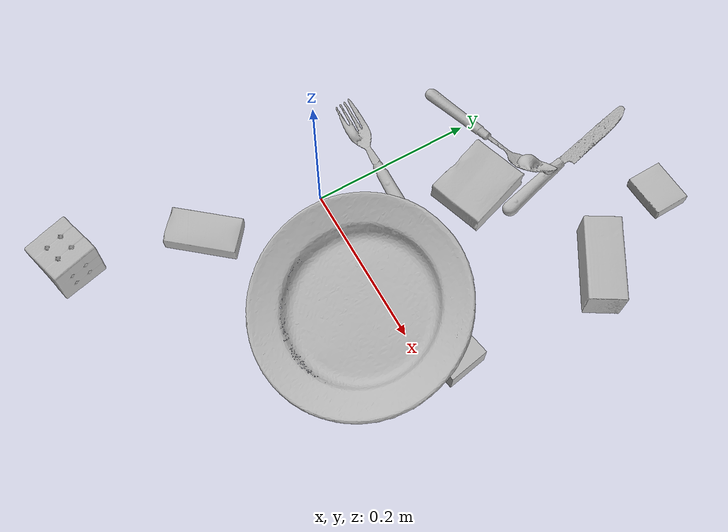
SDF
<sdf version="1.4">
  <world name="default">
    <light name="light1" type="point">
      <pose>0 0 1 0 0 0</pose>
      <diffuse>3 3 3 1</diffuse>
      <specular>3 3 3 1</specular>
    </light>
    <light name="light2" type="point">
      <pose>0 0.5 2 0 0 0</pose>
      <diffuse>1 1 1 1</diffuse>
      <specular>1 1 1 1</specular>
    </light>
    <light name="light3" type="point">
      <pose>0 0.5 2 0 0 0</pose>
      <diffuse>3 3 3 1</diffuse>
      <specular>3 3 3 1</specular>
    </light>
    <scene>
      <ambient>0.7 0.7 0.7</ambient>
    </scene>
    <model name="box11">
      <link name="link_box11">
        <collision name="default">
          <geometry>
            <mesh>
              <uri>model://jenga/collision_meshes/collision.obj</uri>
              <scale>1.0 1.0 1.0</scale>
            </mesh>
          </geometry>
          <surface>
            <friction>
              <ode>
                <mu>0.5</mu>
                <mu2>0.5</mu2>
              </ode>
            </friction>
          <contact>
        <ode>
            <max_vel>0</max_vel>
            <min_depth>0.0001</min_depth>
            <kp>1e8</kp>
        </ode>
    </contact></surface>
        </collision>
        <visual name="default">
          <geometry>
            <mesh>
              <uri>model://jenga/visual_meshes/visual.dae</uri>
              <scale>1.0 1.0 1.0</scale>
            </mesh>
          </geometry>
        </visual>
        <inertial>
          <mass>0.24099597334861755</mass>
          <pose>-2.502855807051674e-07 -0.00010250010382151231 -4.0923401684267446e-05 0.0 -7.34215461761844e-07 0.0</pose>
          <inertia>
            <ixx>6.668944e-05</ixx>
            <iyy>0.0004518858</iyy>
            <izz>0.00048242652</izz>
            <ixy>0</ixy>
            <ixz>0</ixz>
            <iyz>0</iyz>
          </inertia>
        </inertial>
      </link>
      <pose>0.19952170550823212 0.023723654448986053 0.015000127255916595 8.040477355530388e-06 -1.0703184092449682e-06 0.17751315015930222</pose>
    </model>
    <model name="box12">
      <link name="link_box12">
        <collision name="default">
          <geometry>
            <mesh>
              <uri>model://wood_block/collision_meshes/collision.obj</uri>
              <scale>0.5 0.5 0.5</scale>
            </mesh>
          </geometry>
          <surface>
            <friction>
              <ode>
                <mu>0.5</mu>
                <mu2>0.5</mu2>
              </ode>
            </friction>
          <contact>
        <ode>
            <max_vel>0</max_vel>
            <min_depth>0.0001</min_depth>
            <kp>1e8</kp>
        </ode>
    </contact></surface>
        </collision>
        <visual name="default">
          <geometry>
            <mesh>
              <uri>model://wood_block/visual_meshes/visual.dae</uri>
              <scale>0.5 0.5 0.5</scale>
            </mesh>
          </geometry>
        </visual>
        <inertial>
          <mass>0.14152581989765167</mass>
          <pose>-2.9066577553749084e-06 -0.000285404734313488 0.00013204291462898254 -0.05220812938960465 -0.005192695343712196 -0.006861377662393293</pose>
          <inertia>
            <ixx>4.7345737e-05</ixx>
            <iyy>0.0001495652</iyy>
            <izz>0.00014900575</izz>
            <ixy>0</ixy>
            <ixz>0</ixz>
            <iyz>0</iyz>
          </inertia>
        </inertial>
      </link>
      <pose>0.24485474824905396 0.23469938337802887 0.0226292721927166 -0.005208486749764756 0.00571867677857403 -0.5492011779512435</pose>
    </model>
    <model name="box13">
      <link name="link_box13">
        <collision name="default">
          <geometry>
            <mesh>
              <uri>model://sugar_box/collision_meshes/collision.obj</uri>
              <scale>0.5 0.5 0.5</scale>
            </mesh>
          </geometry>
          <surface>
            <friction>
              <ode>
                <mu>0.5</mu>
                <mu2>0.5</mu2>
              </ode>
            </friction>
          <contact>
        <ode>
            <max_vel>0</max_vel>
            <min_depth>0.0001</min_depth>
            <kp>1e8</kp>
        </ode>
    </contact></surface>
        </collision>
        <visual name="default">
          <geometry>
            <mesh>
              <uri>model://sugar_box/visual_meshes/visual.dae</uri>
              <scale>0.5 0.5 0.5</scale>
            </mesh>
          </geometry>
        </visual>
        <inertial>
          <mass>0.08336380124092102</mass>
          <pose>0.0005171863595023751 1.924554817378521e-05 -0.00018182402709499002 -0.0004046263001201691 0.0010506636386254094 0.0026153790217303746</pose>
          <inertia>
            <ixx>1.7364619e-05</ixx>
            <iyy>5.612603e-05</iyy>
            <izz>6.718955e-05</izz>
            <ixy>0</ixy>
            <ixz>0</ixz>
            <iyz>0</iyz>
          </inertia>
        </inertial>
      </link>
      <pose>-0.023090051487088203 -0.14314325153827667 0.011399304494261742 0.0007753718120234101 -0.02343327484578763 0.8592849980427695</pose>
    </model>
    <model name="box21">
      <link name="link_box21">
        <collision name="default">
          <geometry>
            <mesh>
              <uri>model://pudding_box/collision_meshes/collision.obj</uri>
              <scale>0.5 0.5 0.5</scale>
            </mesh>
          </geometry>
          <surface>
            <friction>
              <ode>
                <mu>0.5</mu>
                <mu2>0.5</mu2>
              </ode>
            </friction>
          <contact>
        <ode>
            <max_vel>0</max_vel>
            <min_depth>0.0001</min_depth>
            <kp>1e8</kp>
        </ode>
    </contact></surface>
        </collision>
        <visual name="default">
          <geometry>
            <mesh>
              <uri>model://pudding_box/visual_meshes/visual.dae</uri>
              <scale>0.5 0.5 0.5</scale>
            </mesh>
          </geometry>
        </visual>
        <inertial>
          <mass>0.025778822600841522</mass>
          <pose>0.00024474109522998333 0.00040339428232982755 -0.0002594413817860186 0.005213100851918505 -0.006603799640504885 0.02007982516037135</pose>
          <inertia>
            <ixx>7.285408e-06</ixx>
            <iyy>4.901674e-06</iyy>
            <izz>1.07588085e-05</izz>
            <ixy>0</ixy>
            <ixz>0</ixz>
            <iyz>0</iyz>
          </inertia>
        </inertial>
      </link>
      <pose>0.19553638994693756 0.3534775376319885 0.009862901642918587 0.022348533618125388 -0.011391752142210146 -1.5438858621706084</pose>
    </model>
    <model name="box22">
      <link name="link_box22">
        <collision name="default">
          <geometry>
            <mesh>
              <uri>model://rubiks_cube/collision_meshes/collision.obj</uri>
              <scale>1.0 1.0 1.0</scale>
            </mesh>
          </geometry>
          <surface>
            <friction>
              <ode>
                <mu>0.5</mu>
                <mu2>0.5</mu2>
              </ode>
            </friction>
          <contact>
        <ode>
            <max_vel>0</max_vel>
            <min_depth>0.0001</min_depth>
            <kp>1e8</kp>
        </ode>
    </contact></surface>
        </collision>
        <visual name="default">
          <geometry>
            <mesh>
              <uri>model://rubiks_cube/visual_meshes/visual.dae</uri>
              <scale>1.0 1.0 1.0</scale>
            </mesh>
          </geometry>
        </visual>
        <inertial>
          <mass>0.22147096693515778</mass>
          <pose>2.6721041649580002e-05 5.256967051536776e-05 -7.264316082000732e-06 -0.05467273282600652 -0.09814100107642566 -0.034457018786431724</pose>
          <inertia>
            <ixx>0.00012237758</ixx>
            <iyy>0.00012180688</iyy>
            <izz>0.00012339167</izz>
            <ixy>0</ixy>
            <ixz>0</ixz>
            <iyz>0</iyz>
          </inertia>
        </inertial>
      </link>
      <pose>-0.06437104195356369 -0.29532283544540405 0.02867896482348442 -4.08865425558949e-06 -1.724972763149572e-06 0.2674667326248881</pose>
    </model>
    <model name="box23">
      <link name="link_box23">
        <collision name="default">
          <geometry>
            <mesh>
              <uri>model://gelatin_box/collision_meshes/collision.obj</uri>
              <scale>1.0 1.0 1.0</scale>
            </mesh>
          </geometry>
          <surface>
            <friction>
              <ode>
                <mu>0.5</mu>
                <mu2>0.5</mu2>
              </ode>
            </friction>
          <contact>
        <ode>
            <max_vel>0</max_vel>
            <min_depth>0.0001</min_depth>
            <kp>1e8</kp>
        </ode>
    </contact></surface>
        </collision>
        <visual name="default">
          <geometry>
            <mesh>
              <uri>model://gelatin_box/visual_meshes/visual.dae</uri>
              <scale>1.0 1.0 1.0</scale>
            </mesh>
          </geometry>
        </visual>
        <inertial>
          <mass>0.20053431391716003</mass>
          <pose>0.0004319618456065655 0.00011156871914863586 -0.00036403207923285663 -0.001050372330881514 -0.004755818219920532 0.016440563197859918</pose>
          <inertia>
            <ixx>0.00014156084</ixx>
            <iyy>0.00010111618</iyy>
            <izz>0.00021548718</izz>
            <ixy>0</ixy>
            <ixz>0</ixz>
            <iyz>0</iyz>
          </inertia>
        </inertial>
      </link>
      <pose>0.08363310992717743 0.16921645402908325 0.015168318524956703 0.005597465289949769 -0.007304722539429962 -2.835503927229553</pose>
    </model>
    <model name="plate1">
      <link name="link_plate1">
        <collision name="default">
          <geometry>
            <mesh>
              <uri>model://plate/collision_meshes/collision.obj</uri>
              <scale>1.0 1.0 1.0</scale>
            </mesh>
          </geometry>
          <surface>
            <friction>
              <ode>
                <mu>0.5</mu>
                <mu2>0.5</mu2>
              </ode>
            </friction>
          <contact>
        <ode>
            <max_vel>0</max_vel>
            <min_depth>0.0001</min_depth>
            <kp>1e8</kp>
        </ode>
    </contact></surface>
        </collision>
        <visual name="default">
          <geometry>
            <mesh>
              <uri>model://plate/visual_meshes/visual.dae</uri>
              <scale>1.0 1.0 1.0</scale>
            </mesh>
          </geometry>
        </visual>
        <inertial>
          <mass>0.1705944687128067</mass>
          <pose>-0.0006044638575986028 0.0002782570372801274 -0.0010561983799561858 0.002218806973518856 -0.003225464946202784 0.4526031622217862</pose>
          <inertia>
            <ixx>0.0007980444</ixx>
            <iyy>0.0007904114</iyy>
            <izz>0.0015608557</izz>
            <ixy>0</ixy>
            <ixz>0</ixz>
            <iyz>0</iyz>
          </inertia>
        </inertial>
      </link>
      <pose>0.15573881566524506 -0.03437168151140213 0.035551559180021286 -0.2675804438828198 -0.10721821546634572 2.8615970587198913</pose>
    </model>
    <model name="silverware1">
      <link name="link_silverware1">
        <collision name="default">
          <geometry>
            <mesh>
              <uri>model://fork/collision_meshes/collision.obj</uri>
              <scale>1.0 1.0 1.0</scale>
            </mesh>
          </geometry>
          <surface>
            <friction>
              <ode>
                <mu>0.5</mu>
                <mu2>0.5</mu2>
              </ode>
            </friction>
          <contact>
        <ode>
            <max_vel>0</max_vel>
            <min_depth>0.0001</min_depth>
            <kp>1e8</kp>
        </ode>
    </contact></surface>
        </collision>
        <visual name="default">
          <geometry>
            <mesh>
              <uri>model://fork/visual_meshes/visual.dae</uri>
              <scale>1.0 1.0 1.0</scale>
            </mesh>
          </geometry>
        </visual>
        <inertial>
          <mass>0.02693658135831356</mass>
          <pose>-0.02957003191113472 0.00046588244731538 0.0003218860365450382 -0.013551533598057301 -0.010977833518912038 0.014453896181446386</pose>
          <inertia>
            <ixx>9.442797e-07</ixx>
            <iyy>7.032368e-05</iyy>
            <izz>7.074603e-05</izz>
            <ixy>0</ixy>
            <ixz>0</ixz>
            <iyz>0</iyz>
          </inertia>
        </inertial>
      </link>
      <pose>-0.0017143692821264267 0.08111332356929779 0.005755433812737465 -0.18993704613598644 0.02403224015698773 3.073596123115807</pose>
    </model>
    <model name="silverware2">
      <link name="link_silverware2">
        <collision name="default">
          <geometry>
            <mesh>
              <uri>model://knife/collision_meshes/collision.obj</uri>
              <scale>1.0 1.0 1.0</scale>
            </mesh>
          </geometry>
          <surface>
            <friction>
              <ode>
                <mu>0.5</mu>
                <mu2>0.5</mu2>
              </ode>
            </friction>
          <contact>
        <ode>
            <max_vel>0</max_vel>
            <min_depth>0.0001</min_depth>
            <kp>1e8</kp>
        </ode>
    </contact></surface>
        </collision>
        <visual name="default">
          <geometry>
            <mesh>
              <uri>model://knife/visual_meshes/visual.dae</uri>
              <scale>1.0 1.0 1.0</scale>
            </mesh>
          </geometry>
        </visual>
        <inertial>
          <mass>0.029087698087096214</mass>
          <pose>-0.023785242810845375 0.0015275123296305537 5.0620237743714824e-05 0.07305335090844457 0.017248415402536993 -0.007409830271159857</pose>
          <inertia>
            <ixx>8.256269e-07</ixx>
            <iyy>0.00011175022</iyy>
            <izz>0.00011201614</izz>
            <ixy>0</ixy>
            <ixz>0</ixz>
            <iyz>0</iyz>
          </inertia>
        </inertial>
      </link>
      <pose>0.10659006983041763 0.2843782901763916 0.007946555502712727 -0.02422488234875784 -0.014543733002825377 1.7934231468248683</pose>
    </model>
    <model name="silverware3">
      <link name="link_silverware3">
        <collision name="default">
          <geometry>
            <mesh>
              <uri>model://spoon/collision_meshes/collision.obj</uri>
              <scale>1.0 1.0 1.0</scale>
            </mesh>
          </geometry>
          <surface>
            <friction>
              <ode>
                <mu>0.5</mu>
                <mu2>0.5</mu2>
              </ode>
            </friction>
          <contact>
        <ode>
            <max_vel>0</max_vel>
            <min_depth>0.0001</min_depth>
            <kp>1e8</kp>
        </ode>
    </contact></surface>
        </collision>
        <visual name="default">
          <geometry>
            <mesh>
              <uri>model://spoon/visual_meshes/visual.dae</uri>
              <scale>1.0 1.0 1.0</scale>
            </mesh>
          </geometry>
        </visual>
        <inertial>
          <mass>0.04163059964776039</mass>
          <pose>-0.005526324268430471 -0.001603418029844761 -0.0007271656068041921 0.035215733596471024 -0.03906582179646946 0.006150610371924991</pose>
          <inertia>
            <ixx>2.3155617e-06</ixx>
            <iyy>0.00015840305</iyy>
            <izz>0.00015954502</izz>
            <ixy>0</ixy>
            <ixz>0</ixz>
            <iyz>0</iyz>
          </inertia>
        </inertial>
      </link>
      <pose>0.03096461296081543 0.2196679562330246 0.012965372763574123 -0.6143598821147452 -0.04626791767895658 0.2978358334366078</pose>
    </model>
  <physics type="ode">
      <max_contacts>50</max_contacts>
      <ode>
        <solver>
          <type>quick</type>
          <iters>75</iters>
        </solver>
        <constraints>
          <contact_max_correcting_vel>0</contact_max_correcting_vel>
          <contact_surface_layer>0</contact_surface_layer>
        </constraints>
      </ode>
    </physics></world>
</sdf>
